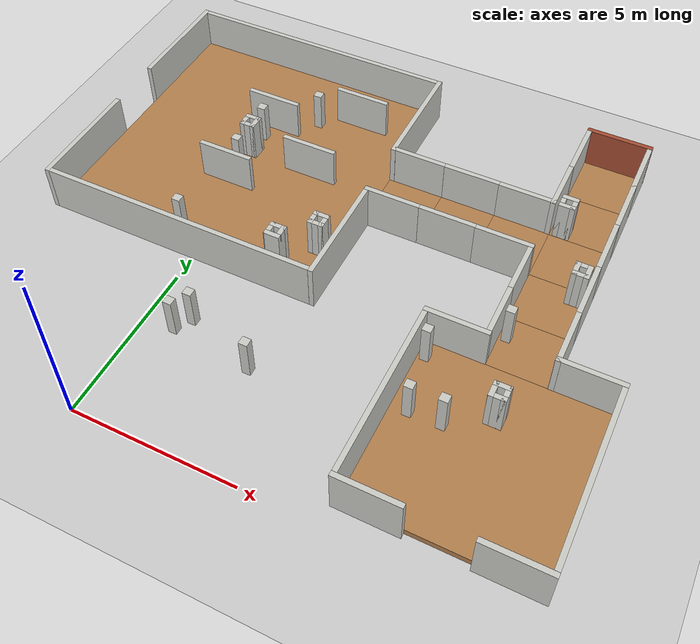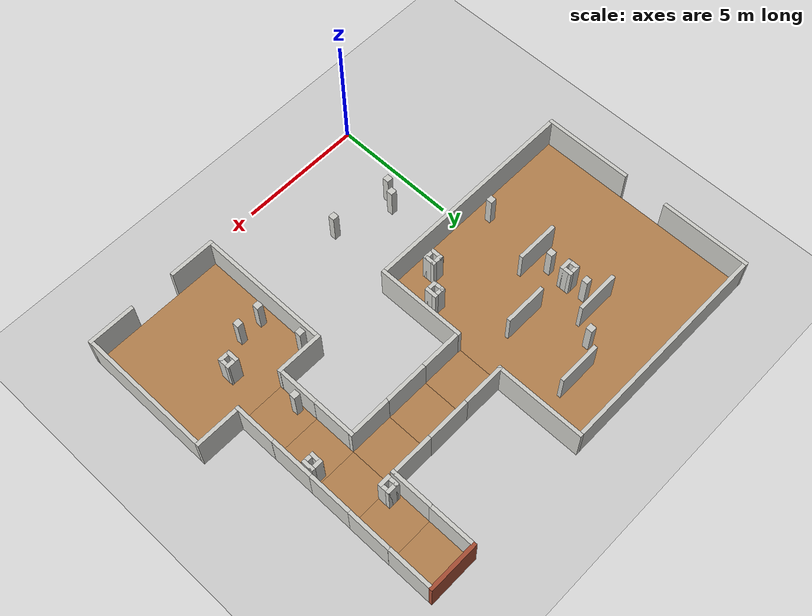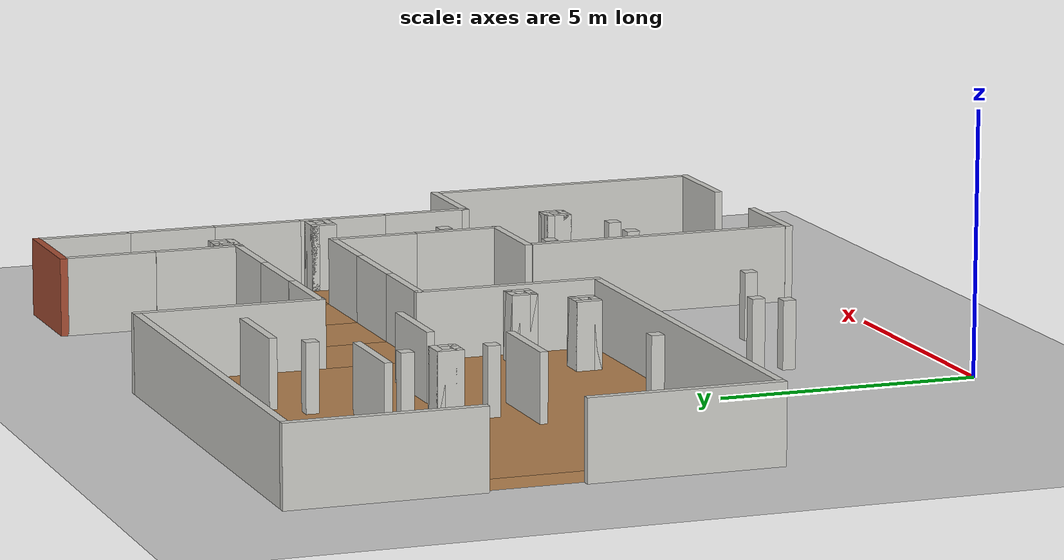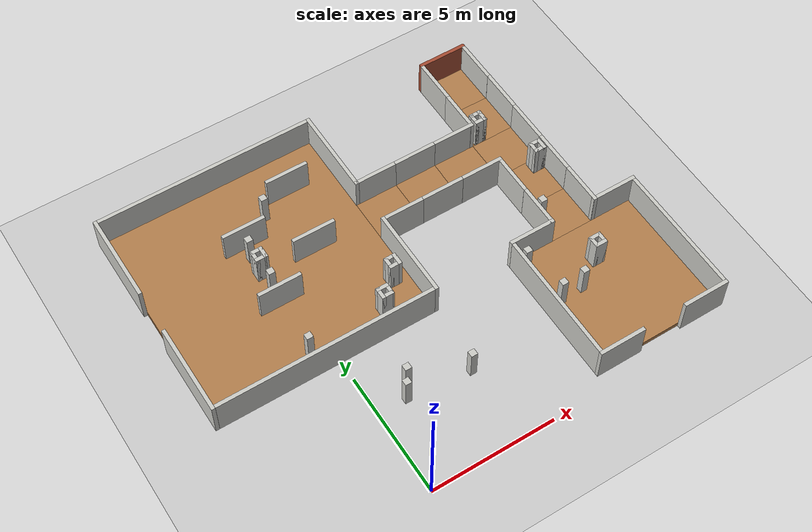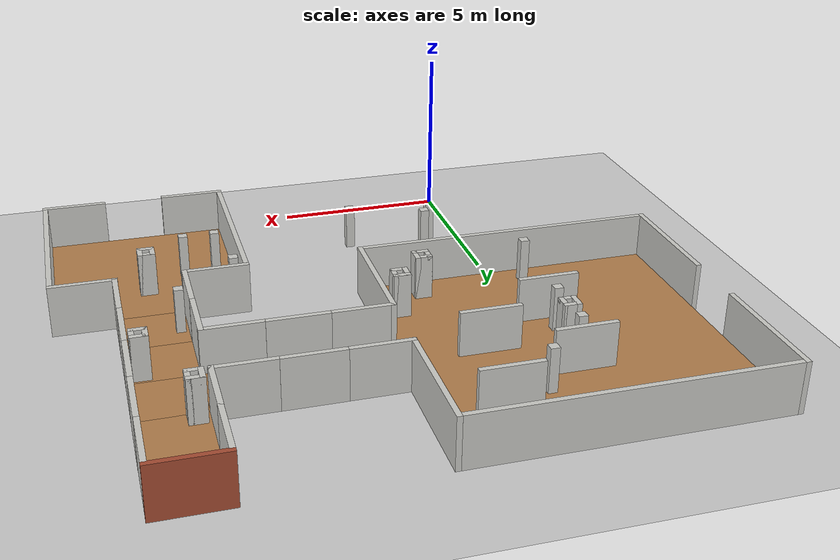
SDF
<sdf version="1.6">
 <world name="default">
  <model name="ground_plane">
   <static>1</static>
   <link name="link">
    <collision name="collision">
     <geometry><plane><normal>0 0 1</normal><size>100 100</size></plane></geometry>
     <surface><friction><ode><mu>100</mu><mu2>50</mu2></ode></friction></surface>
    </collision>
    <visual name="visual">
     <cast_shadows>0</cast_shadows>
     <geometry><plane><normal>0 0 1</normal><size>100 100</size></plane></geometry>
     <material>
      <script><uri>file://media/materials/scripts/gazebo.material</uri><name>Gazebo/Grey</name></script>
     </material>
    </visual>
   </link>
  </model>
  <model name="nerve_room_5x5ARENA_straight">
   <pose>-0.477071 10.3505 0 0 -0 1.5708</pose>
   <link name="Wall_11">
    <collision name="Wall_11_Collision">
     <geometry><box><size>8.75 0.15 1.5</size></box></geometry>
     <pose>0 0 0.75 0 -0 0</pose>
    </collision>
    <visual name="Wall_11_Visual">
     <pose>0 0 0.75 0 -0 0</pose>
     <geometry><box><size>8.75 0.15 1.5</size></box></geometry>
     <material>
      <script><uri>file://media/materials/scripts/gazebo.material</uri><name>Gazebo/CeilingTiled</name></script>
      <ambient>1 0.764706 0.305882 1</ambient>
     </material>
    </visual>
    <pose>4.4489 -0.000387 0 0 0 -1.5708</pose>
   </link>
   <link name="Wall_13">
    <collision name="Wall_13_Collision">
     <geometry><box><size>8.75 0.15 1.5</size></box></geometry>
     <pose>0 0 0.75 0 -0 0</pose>
    </collision>
    <visual name="Wall_13_Visual">
     <pose>0 0 0.75 0 -0 0</pose>
     <geometry><box><size>8.75 0.15 1.5</size></box></geometry>
     <material>
      <script><uri>file://media/materials/scripts/gazebo.material</uri><name>Gazebo/CeilingTiled</name></script>
      <ambient>1 0.764706 0.305882 1</ambient>
     </material>
    </visual>
    <pose>-4.44913 0.000846 0 0 0 -1.5708</pose>
   </link>
   <link name="Wall_15">
    <collision name="Wall_15_Collision">
     <geometry><box><size>3.65 0.15 1.5</size></box></geometry>
     <pose>0 0 0.75 0 -0 0</pose>
    </collision>
    <visual name="Wall_15_Visual">
     <pose>0 0 0.75 0 -0 0</pose>
     <geometry><box><size>3.65 0.15 1.5</size></box></geometry>
     <material>
      <script><uri>file://media/materials/scripts/gazebo.material</uri><name>Gazebo/CeilingTiled</name></script>
      <ambient>1 0.764706 0.305882 1</ambient>
     </material>
    </visual>
    <pose>2.69939 -4.45071 0 0 -0 0</pose>
   </link>
   <link name="Wall_17">
    <collision name="Wall_17_Collision">
     <geometry><box><size>3.65 0.15 1.5</size></box></geometry>
     <pose>0 0 0.75 0 -0 0</pose>
    </collision>
    <visual name="Wall_17_Visual">
     <pose>0 0 0.75 0 -0 0</pose>
     <geometry><box><size>3.65 0.15 1.5</size></box></geometry>
     <material>
      <script><uri>file://media/materials/scripts/gazebo.material</uri><name>Gazebo/CeilingTiled</name></script>
      <ambient>1 0.764706 0.305882 1</ambient>
     </material>
    </visual>
    <pose>-2.69939 4.45071 0 0 -0 0</pose>
   </link>
   <link name="Wall_19">
    <collision name="Wall_19_Collision">
     <geometry><box><size>3.65 0.15 1.5</size></box></geometry>
     <pose>0 0 0.75 0 -0 0</pose>
    </collision>
    <visual name="Wall_19_Visual">
     <pose>0 0 0.75 0 -0 0</pose>
     <geometry><box><size>3.65 0.15 1.5</size></box></geometry>
     <material>
      <script><uri>file://media/materials/scripts/gazebo.material</uri><name>Gazebo/CeilingTiled</name></script>
      <ambient>1 0.764706 0.305882 1</ambient>
     </material>
    </visual>
    <pose>2.69903 4.44972 0 0 -0 0</pose>
   </link>
   <link name="Wall_21">
    <collision name="Wall_21_Collision">
     <geometry><box><size>3.65 0.15 1.5</size></box></geometry>
     <pose>0 0 0.75 0 -0 0</pose>
    </collision>
    <visual name="Wall_21_Visual">
     <pose>0 0 0.75 0 -0 0</pose>
     <geometry><box><size>3.65 0.15 1.5</size></box></geometry>
     <material>
      <script><uri>file://media/materials/scripts/gazebo.material</uri><name>Gazebo/CeilingTiled</name></script>
      <ambient>1 0.764706 0.305882 1</ambient>
     </material>
    </visual>
    <pose>-2.69904 -4.44976 0 0 -0 0</pose>
   </link>
   <link name="Wall_6">
    <collision name="Wall_6_Collision">
     <geometry><box><size>8.76 8.75 0.2</size></box></geometry>
     <pose>0 0 0.1 0 -0 0</pose>
    </collision>
    <visual name="Wall_6_Visual">
     <pose>0 0 0.1 0 -0 0</pose>
     <geometry><box><size>8.76 8.75 0.2</size></box></geometry>
     <material>
      <script><uri>file://media/materials/scripts/gazebo.material</uri><name>Gazebo/Wood</name></script>
      <ambient>1 0.764706 0.305882 1</ambient>
     </material>
    </visual>
    <pose>0.000265 -0.004129 0 0 -0 1.5708</pose>
   </link>
   <static>1</static>
  </model>
  <model name="nerve_room_3x3">
   <pose>10.024 3.34931 0 0 -0 0</pose>
   <link name="Wall_11">
    <collision name="Wall_11_Collision">
     <geometry><box><size>5.25 0.15 1.5</size></box></geometry>
     <pose>0 0 0.75 0 -0 0</pose>
    </collision>
    <visual name="Wall_11_Visual">
     <pose>0 0 0.75 0 -0 0</pose>
     <geometry><box><size>5.25 0.15 1.5</size></box></geometry>
     <material>
      <script><uri>file://media/materials/scripts/gazebo.material</uri><name>Gazebo/CeilingTiled</name></script>
      <ambient>1 0.764706 0.305882 1</ambient>
     </material>
    </visual>
    <pose>-2.69653 -0.003278 0 0 0 -1.5708</pose>
   </link>
   <link name="Wall_13">
    <collision name="Wall_13_Collision">
     <geometry><box><size>5.25 0.15 1.5</size></box></geometry>
     <pose>0 0 0.75 0 -0 0</pose>
    </collision>
    <visual name="Wall_13_Visual">
     <pose>0 0 0.75 0 -0 0</pose>
     <geometry><box><size>5.25 0.15 1.5</size></box></geometry>
     <material>
      <script><uri>file://media/materials/scripts/gazebo.material</uri><name>Gazebo/CeilingTiled</name></script>
      <ambient>1 0.764706 0.305882 1</ambient>
     </material>
    </visual>
    <pose>2.69688 -0.000452 0 0 0 -1.5708</pose>
   </link>
   <link name="Wall_15">
    <collision name="Wall_15_Collision">
     <geometry><box><size>1.9 0.15 1.5</size></box></geometry>
     <pose>0 0 0.75 0 -0 0</pose>
    </collision>
    <visual name="Wall_15_Visual">
     <pose>0 0 0.75 0 -0 0</pose>
     <geometry><box><size>1.9 0.15 1.5</size></box></geometry>
     <material>
      <script><uri>file://media/materials/scripts/gazebo.material</uri><name>Gazebo/CeilingTiled</name></script>
      <ambient>1 0.764706 0.305882 1</ambient>
     </material>
    </visual>
    <pose>-1.82279 -2.70217 0 0 -0 0</pose>
   </link>
   <link name="Wall_17">
    <collision name="Wall_17_Collision">
     <geometry><box><size>1.9 0.15 1.5</size></box></geometry>
     <pose>0 0 0.75 0 -0 0</pose>
    </collision>
    <visual name="Wall_17_Visual">
     <pose>0 0 0.75 0 -0 0</pose>
     <geometry><box><size>1.9 0.15 1.5</size></box></geometry>
     <material>
      <script><uri>file://media/materials/scripts/gazebo.material</uri><name>Gazebo/CeilingTiled</name></script>
      <ambient>1 0.764706 0.305882 1</ambient>
     </material>
    </visual>
    <pose>-1.82219 2.69878 0 0 -0 0</pose>
   </link>
   <link name="Wall_19">
    <collision name="Wall_19_Collision">
     <geometry><box><size>1.9 0.15 1.5</size></box></geometry>
     <pose>0 0 0.75 0 -0 0</pose>
    </collision>
    <visual name="Wall_19_Visual">
     <pose>0 0 0.75 0 -0 0</pose>
     <geometry><box><size>1.9 0.15 1.5</size></box></geometry>
     <material>
      <script><uri>file://media/materials/scripts/gazebo.material</uri><name>Gazebo/CeilingTiled</name></script>
      <ambient>1 0.764706 0.305882 1</ambient>
     </material>
    </visual>
    <pose>1.82194 2.70217 0 0 -0 0</pose>
   </link>
   <link name="Wall_21">
    <collision name="Wall_21_Collision">
     <geometry><box><size>1.9 0.15 1.5</size></box></geometry>
     <pose>0 0 0.75 0 -0 0</pose>
    </collision>
    <visual name="Wall_21_Visual">
     <pose>0 0 0.75 0 -0 0</pose>
     <geometry><box><size>1.9 0.15 1.5</size></box></geometry>
     <material>
      <script><uri>file://media/materials/scripts/gazebo.material</uri><name>Gazebo/CeilingTiled</name></script>
      <ambient>1 0.764706 0.305882 1</ambient>
     </material>
    </visual>
    <pose>1.82279 -2.70173 0 0 -0 0</pose>
   </link>
   <link name="Wall_6">
    <collision name="Wall_6_Collision">
     <geometry><box><size>5.26 5.25 0.2</size></box></geometry>
     <pose>0 0 0.1 0 -0 0</pose>
    </collision>
    <visual name="Wall_6_Visual">
     <pose>0 0 0.1 0 -0 0</pose>
     <geometry><box><size>5.26 5.25 0.2</size></box></geometry>
     <material>
      <script><uri>file://media/materials/scripts/gazebo.material</uri><name>Gazebo/Wood</name></script>
      <ambient>1 0.764706 0.305882 1</ambient>
     </material>
    </visual>
    <pose>-0.001194 0.003047 0 0 -0 1.5708</pose>
   </link>
   <static>1</static>
  </model>
  <model name="nerve_straight_11">
   <pose>4.78029 10.352 0 0 0 -1.5708</pose>
   <link name="Wall_0">
    <collision name="Wall_0_Collision">
     <geometry><box><size>1.76 1.75 0.2</size></box></geometry>
     <pose>0 0 0.1 0 -0 0</pose>
    </collision>
    <visual name="Wall_0_Visual">
     <pose>0 0 0.1 0 -0 0</pose>
     <geometry><box><size>1.76 1.75 0.2</size></box></geometry>
     <material>
      <script><uri>file://media/materials/scripts/gazebo.material</uri><name>Gazebo/Wood</name></script>
      <ambient>1 0.764706 0.305882 1</ambient>
     </material>
    </visual>
    <pose>0.005 -0.002 0 0 -0 3.14159</pose>
   </link>
   <link name="Wall_2">
    <collision name="Wall_2_Collision">
     <geometry><box><size>1.75 0.15 1.5</size></box></geometry>
     <pose>0 0 0.75 0 -0 0</pose>
    </collision>
    <visual name="Wall_2_Visual">
     <pose>0 0 0.75 0 -0 0</pose>
     <geometry><box><size>1.75 0.15 1.5</size></box></geometry>
     <material>
      <script><uri>file://media/materials/scripts/gazebo.material</uri><name>Gazebo/CeilingTiled</name></script>
      <ambient>1 0.764706 0.305882 1</ambient>
     </material>
    </visual>
    <pose>-0.955 0.002 0 0 0 -1.5708</pose>
   </link>
   <link name="Wall_4">
    <collision name="Wall_4_Collision">
     <geometry><box><size>1.75 0.15 1.5</size></box></geometry>
     <pose>0 0 0.75 0 -0 0</pose>
    </collision>
    <visual name="Wall_4_Visual">
     <pose>0 0 0.75 0 -0 0</pose>
     <geometry><box><size>1.75 0.15 1.5</size></box></geometry>
     <material>
      <script><uri>file://media/materials/scripts/gazebo.material</uri><name>Gazebo/CeilingTiled</name></script>
      <ambient>1 0.764706 0.305882 1</ambient>
     </material>
    </visual>
    <pose>0.955 0.002 0 0 0 -1.5708</pose>
   </link>
   <static>1</static>
  </model>
  <model name="nerve_straight_12">
   <pose>6.52537 10.3551 0 0 0 -1.5708</pose>
   <link name="Wall_0">
    <collision name="Wall_0_Collision">
     <geometry><box><size>1.76 1.75 0.2</size></box></geometry>
     <pose>0 0 0.1 0 -0 0</pose>
    </collision>
    <visual name="Wall_0_Visual">
     <pose>0 0 0.1 0 -0 0</pose>
     <geometry><box><size>1.76 1.75 0.2</size></box></geometry>
     <material>
      <script><uri>file://media/materials/scripts/gazebo.material</uri><name>Gazebo/Wood</name></script>
      <ambient>1 0.764706 0.305882 1</ambient>
     </material>
    </visual>
    <pose>0.005 -0.002 0 0 -0 3.14159</pose>
   </link>
   <link name="Wall_2">
    <collision name="Wall_2_Collision">
     <geometry><box><size>1.75 0.15 1.5</size></box></geometry>
     <pose>0 0 0.75 0 -0 0</pose>
    </collision>
    <visual name="Wall_2_Visual">
     <pose>0 0 0.75 0 -0 0</pose>
     <geometry><box><size>1.75 0.15 1.5</size></box></geometry>
     <material>
      <script><uri>file://media/materials/scripts/gazebo.material</uri><name>Gazebo/CeilingTiled</name></script>
      <ambient>1 0.764706 0.305882 1</ambient>
     </material>
    </visual>
    <pose>-0.955 0.002 0 0 0 -1.5708</pose>
   </link>
   <link name="Wall_4">
    <collision name="Wall_4_Collision">
     <geometry><box><size>1.75 0.15 1.5</size></box></geometry>
     <pose>0 0 0.75 0 -0 0</pose>
    </collision>
    <visual name="Wall_4_Visual">
     <pose>0 0 0.75 0 -0 0</pose>
     <geometry><box><size>1.75 0.15 1.5</size></box></geometry>
     <material>
      <script><uri>file://media/materials/scripts/gazebo.material</uri><name>Gazebo/CeilingTiled</name></script>
      <ambient>1 0.764706 0.305882 1</ambient>
     </material>
    </visual>
    <pose>0.955 0.002 0 0 0 -1.5708</pose>
   </link>
   <static>1</static>
  </model>
  <model name="nerve_straight_12_clone">
   <pose>8.26364 10.3519 0 0 0 -1.5708</pose>
   <link name="Wall_0">
    <collision name="Wall_0_Collision">
     <geometry><box><size>1.76 1.75 0.2</size></box></geometry>
     <pose>0 0 0.1 0 -0 0</pose>
    </collision>
    <visual name="Wall_0_Visual">
     <pose>0 0 0.1 0 -0 0</pose>
     <geometry><box><size>1.76 1.75 0.2</size></box></geometry>
     <material>
      <script><uri>file://media/materials/scripts/gazebo.material</uri><name>Gazebo/Wood</name></script>
      <ambient>1 0.764706 0.305882 1</ambient>
     </material>
    </visual>
    <pose>0.005 -0.002 0 0 -0 3.14159</pose>
   </link>
   <link name="Wall_2">
    <collision name="Wall_2_Collision">
     <geometry><box><size>1.75 0.15 1.5</size></box></geometry>
     <pose>0 0 0.75 0 -0 0</pose>
    </collision>
    <visual name="Wall_2_Visual">
     <pose>0 0 0.75 0 -0 0</pose>
     <geometry><box><size>1.75 0.15 1.5</size></box></geometry>
     <material>
      <script><uri>file://media/materials/scripts/gazebo.material</uri><name>Gazebo/CeilingTiled</name></script>
      <ambient>1 0.764706 0.305882 1</ambient>
     </material>
    </visual>
    <pose>-0.955 0.002 0 0 0 -1.5708</pose>
   </link>
   <link name="Wall_4">
    <collision name="Wall_4_Collision">
     <geometry><box><size>1.75 0.15 1.5</size></box></geometry>
     <pose>0 0 0.75 0 -0 0</pose>
    </collision>
    <visual name="Wall_4_Visual">
     <pose>0 0 0.75 0 -0 0</pose>
     <geometry><box><size>1.75 0.15 1.5</size></box></geometry>
     <material>
      <script><uri>file://media/materials/scripts/gazebo.material</uri><name>Gazebo/CeilingTiled</name></script>
      <ambient>1 0.764706 0.305882 1</ambient>
     </material>
    </visual>
    <pose>0.955 0.002 0 0 0 -1.5708</pose>
   </link>
   <static>1</static>
  </model>
  <model name="nerve_straight_12_clone_0">
   <pose>10.0238 12.0922 0 0 -0 0</pose>
   <link name="Wall_0">
    <collision name="Wall_0_Collision">
     <geometry><box><size>1.76 1.75 0.2</size></box></geometry>
     <pose>0 0 0.1 0 -0 0</pose>
    </collision>
    <visual name="Wall_0_Visual">
     <pose>0 0 0.1 0 -0 0</pose>
     <geometry><box><size>1.76 1.75 0.2</size></box></geometry>
     <material>
      <script><uri>file://media/materials/scripts/gazebo.material</uri><name>Gazebo/Wood</name></script>
      <ambient>1 0.764706 0.305882 1</ambient>
     </material>
    </visual>
    <pose>0.005 -0.002 0 0 -0 3.14159</pose>
   </link>
   <link name="Wall_2">
    <collision name="Wall_2_Collision">
     <geometry><box><size>1.75 0.15 1.5</size></box></geometry>
     <pose>0 0 0.75 0 -0 0</pose>
    </collision>
    <visual name="Wall_2_Visual">
     <pose>0 0 0.75 0 -0 0</pose>
     <geometry><box><size>1.75 0.15 1.5</size></box></geometry>
     <material>
      <script><uri>file://media/materials/scripts/gazebo.material</uri><name>Gazebo/CeilingTiled</name></script>
      <ambient>1 0.764706 0.305882 1</ambient>
     </material>
    </visual>
    <pose>-0.955 0.002 0 0 0 -1.5708</pose>
   </link>
   <link name="Wall_4">
    <collision name="Wall_4_Collision">
     <geometry><box><size>1.75 0.15 1.5</size></box></geometry>
     <pose>0 0 0.75 0 -0 0</pose>
    </collision>
    <visual name="Wall_4_Visual">
     <pose>0 0 0.75 0 -0 0</pose>
     <geometry><box><size>1.75 0.15 1.5</size></box></geometry>
     <material>
      <script><uri>file://media/materials/scripts/gazebo.material</uri><name>Gazebo/CeilingTiled</name></script>
      <ambient>1 0.764706 0.305882 1</ambient>
     </material>
    </visual>
    <pose>0.955 0.002 0 0 0 -1.5708</pose>
   </link>
   <static>1</static>
  </model>
  <model name="nerve_straight_12_clone_1">
   <pose>10.0195 8.59681 0 0 -0 3.14159</pose>
   <link name="Wall_0">
    <collision name="Wall_0_Collision">
     <geometry><box><size>1.76 1.75 0.2</size></box></geometry>
     <pose>0 0 0.1 0 -0 0</pose>
    </collision>
    <visual name="Wall_0_Visual">
     <pose>0 0 0.1 0 -0 0</pose>
     <geometry><box><size>1.76 1.75 0.2</size></box></geometry>
     <material>
      <script><uri>file://media/materials/scripts/gazebo.material</uri><name>Gazebo/Wood</name></script>
      <ambient>1 0.764706 0.305882 1</ambient>
     </material>
    </visual>
    <pose>0.005 -0.002 0 0 -0 3.14159</pose>
   </link>
   <link name="Wall_2">
    <collision name="Wall_2_Collision">
     <geometry><box><size>1.75 0.15 1.5</size></box></geometry>
     <pose>0 0 0.75 0 -0 0</pose>
    </collision>
    <visual name="Wall_2_Visual">
     <pose>0 0 0.75 0 -0 0</pose>
     <geometry><box><size>1.75 0.15 1.5</size></box></geometry>
     <material>
      <script><uri>file://media/materials/scripts/gazebo.material</uri><name>Gazebo/CeilingTiled</name></script>
      <ambient>1 0.764706 0.305882 1</ambient>
     </material>
    </visual>
    <pose>-0.955 0.002 0 0 0 -1.5708</pose>
   </link>
   <link name="Wall_4">
    <collision name="Wall_4_Collision">
     <geometry><box><size>1.75 0.15 1.5</size></box></geometry>
     <pose>0 0 0.75 0 -0 0</pose>
    </collision>
    <visual name="Wall_4_Visual">
     <pose>0 0 0.75 0 -0 0</pose>
     <geometry><box><size>1.75 0.15 1.5</size></box></geometry>
     <material>
      <script><uri>file://media/materials/scripts/gazebo.material</uri><name>Gazebo/CeilingTiled</name></script>
      <ambient>1 0.764706 0.305882 1</ambient>
     </material>
    </visual>
    <pose>0.955 0.002 0 0 0 -1.5708</pose>
   </link>
   <static>1</static>
  </model>
  <model name="nerve_onewall_1">
   <pose>10.092 10.3466 0 0 -0 3.14159</pose>
   <link name="Wall_0">
    <collision name="Wall_0_Collision">
     <geometry><box><size>1.76 1.75 0.2</size></box></geometry>
     <pose>0 0 0.1 0 -0 0</pose>
    </collision>
    <visual name="Wall_0_Visual">
     <pose>0 0 0.1 0 -0 0</pose>
     <geometry><box><size>1.76 1.75 0.2</size></box></geometry>
     <material>
      <script><uri>file://media/materials/scripts/gazebo.material</uri><name>Gazebo/Wood</name></script>
      <ambient>1 0.764706 0.305882 1</ambient>
     </material>
    </visual>
    <pose>0.0775 -0.002 0 0 -0 3.14159</pose>
   </link>
   <link name="Wall_2">
    <collision name="Wall_2_Collision">
     <geometry><box><size>1.75 0.15 1.5</size></box></geometry>
     <pose>0 0 0.75 0 -0 0</pose>
    </collision>
    <visual name="Wall_2_Visual">
     <pose>0 0 0.75 0 -0 0</pose>
     <geometry><box><size>1.75 0.15 1.5</size></box></geometry>
     <material>
      <script><uri>file://media/materials/scripts/gazebo.material</uri><name>Gazebo/CeilingTiled</name></script>
      <ambient>1 0.764706 0.305882 1</ambient>
     </material>
    </visual>
    <pose>-0.8825 0.002 0 0 0 -1.5708</pose>
   </link>
   <static>1</static>
  </model>
  <model name="nerve_end_0">
   <pose>10.0242 13.8925 0 0 -0 0</pose>
   <link name="Wall_0">
    <collision name="Wall_0_Collision">
     <geometry><box><size>1.76 1.75 0.2</size></box></geometry>
     <pose>0 0 0.1 0 -0 0</pose>
    </collision>
    <visual name="Wall_0_Visual">
     <pose>0 0 0.1 0 -0 0</pose>
     <geometry><box><size>1.76 1.75 0.2</size></box></geometry>
     <material>
      <script><uri>file://media/materials/scripts/gazebo.material</uri><name>Gazebo/Wood</name></script>
      <ambient>1 0.764706 0.305882 1</ambient>
     </material>
    </visual>
    <pose>-0.009 -0.064 0 0 -0 0</pose>
   </link>
   <link name="Wall_2">
    <collision name="Wall_2_Collision">
     <geometry><box><size>1.8 0.15 1.5</size></box></geometry>
     <pose>0 0 0.75 0 -0 0</pose>
    </collision>
    <visual name="Wall_2_Visual">
     <pose>0 0 0.75 0 -0 0</pose>
     <geometry><box><size>1.8 0.15 1.5</size></box></geometry>
     <material>
      <script><uri>file://media/materials/scripts/gazebo.material</uri><name>Gazebo/CeilingTiled</name></script>
      <ambient>1 0.764706 0.305882 1</ambient>
     </material>
    </visual>
    <pose>-0.95 -0.065 0 0 0 -1.5708</pose>
   </link>
   <link name="Wall_4">
    <collision name="Wall_4_Collision">
     <geometry><box><size>1.8 0.15 1.5</size></box></geometry>
     <pose>0 0 0.75 0 -0 0</pose>
    </collision>
    <visual name="Wall_4_Visual">
     <pose>0 0 0.75 0 -0 0</pose>
     <geometry><box><size>1.8 0.15 1.5</size></box></geometry>
     <material>
      <script><uri>file://media/materials/scripts/gazebo.material</uri><name>Gazebo/CeilingTiled</name></script>
      <ambient>1 0.764706 0.305882 1</ambient>
     </material>
    </visual>
    <pose>0.95 -0.065 0 0 0 -1.5708</pose>
   </link>
   <link name="Wall_6">
    <collision name="Wall_6_Collision">
     <geometry><box><size>2.05 0.15 1.5</size></box></geometry>
     <pose>0 0 0.75 0 -0 0</pose>
    </collision>
    <visual name="Wall_6_Visual">
     <pose>0 0 0.75 0 -0 0</pose>
     <geometry><box><size>2.05 0.15 1.5</size></box></geometry>
     <material>
      <script><uri>file://media/materials/scripts/gazebo.material</uri><name>Gazebo/Bricks</name></script>
      <ambient>0.996078 0.47451 0.0196078 1</ambient>
     </material>
    </visual>
    <pose>0 0.89 0 0 -0 0</pose>
   </link>
   <static>1</static>
  </model>
  <model name="nerve_straight_12_clone_1_clone">
   <pose>10.023 6.85178 0 0 -0 3.14159</pose>
   <link name="Wall_0">
    <collision name="Wall_0_Collision">
     <geometry><box><size>1.76 1.75 0.2</size></box></geometry>
     <pose>0 0 0.1 0 -0 0</pose>
    </collision>
    <visual name="Wall_0_Visual">
     <pose>0 0 0.1 0 -0 0</pose>
     <geometry><box><size>1.76 1.75 0.2</size></box></geometry>
     <material>
      <script><uri>file://media/materials/scripts/gazebo.material</uri><name>Gazebo/Wood</name></script>
      <ambient>1 0.764706 0.305882 1</ambient>
     </material>
    </visual>
    <pose>0.005 -0.002 0 0 -0 3.14159</pose>
   </link>
   <link name="Wall_2">
    <collision name="Wall_2_Collision">
     <geometry><box><size>1.75 0.15 1.5</size></box></geometry>
     <pose>0 0 0.75 0 -0 0</pose>
    </collision>
    <visual name="Wall_2_Visual">
     <pose>0 0 0.75 0 -0 0</pose>
     <geometry><box><size>1.75 0.15 1.5</size></box></geometry>
     <material>
      <script><uri>file://media/materials/scripts/gazebo.material</uri><name>Gazebo/CeilingTiled</name></script>
      <ambient>1 0.764706 0.305882 1</ambient>
     </material>
    </visual>
    <pose>-0.955 0.002 0 0 0 -1.5708</pose>
   </link>
   <link name="Wall_4">
    <collision name="Wall_4_Collision">
     <geometry><box><size>1.75 0.15 1.5</size></box></geometry>
     <pose>0 0 0.75 0 -0 0</pose>
    </collision>
    <visual name="Wall_4_Visual">
     <pose>0 0 0.75 0 -0 0</pose>
     <geometry><box><size>1.75 0.15 1.5</size></box></geometry>
     <material>
      <script><uri>file://media/materials/scripts/gazebo.material</uri><name>Gazebo/CeilingTiled</name></script>
      <ambient>1 0.764706 0.305882 1</ambient>
     </material>
    </visual>
    <pose>0.955 0.002 0 0 0 -1.5708</pose>
   </link>
   <static>1</static>
  </model>
  <model name="nerve_obs_squarepillar_large_clone_5">
   <pose>9.99109 4.49916 0.2 0 -0 0</pose>
   <link name="Wall_31">
    <collision name="Wall_31_Collision">
     <geometry><box><size>0.5 0.15 1.3</size></box></geometry>
     <pose>0 0 0.65 0 -0 0</pose>
    </collision>
    <visual name="Wall_31_Visual">
     <pose>0 0 0.65 0 -0 0</pose>
     <geometry><box><size>0.5 0.15 1.3</size></box></geometry>
     <material>
      <script><uri>file://media/materials/scripts/gazebo.material</uri><name>Gazebo/CeilingTiled</name></script>
      <ambient>1 0.764706 0.305882 1</ambient>
     </material>
    </visual>
    <pose>-0.175 0 0 0 0 -1.5708</pose>
   </link>
   <link name="Wall_32">
    <collision name="Wall_32_Collision">
     <geometry><box><size>0.5 0.15 1.3</size></box></geometry>
     <pose>0 0 0.65 0 -0 0</pose>
    </collision>
    <visual name="Wall_32_Visual">
     <pose>0 0 0.65 0 -0 0</pose>
     <geometry><box><size>0.5 0.15 1.3</size></box></geometry>
     <material>
      <script><uri>file://media/materials/scripts/gazebo.material</uri><name>Gazebo/CeilingTiled</name></script>
      <ambient>1 0.764706 0.305882 1</ambient>
     </material>
    </visual>
    <pose>0 -0.175 0 0 -0 0</pose>
   </link>
   <link name="Wall_33">
    <collision name="Wall_33_Collision">
     <geometry><box><size>0.5 0.15 1.3</size></box></geometry>
     <pose>0 0 0.65 0 -0 0</pose>
    </collision>
    <visual name="Wall_33_Visual">
     <pose>0 0 0.65 0 -0 0</pose>
     <geometry><box><size>0.5 0.15 1.3</size></box></geometry>
     <material>
      <script><uri>file://media/materials/scripts/gazebo.material</uri><name>Gazebo/CeilingTiled</name></script>
      <ambient>1 0.764706 0.305882 1</ambient>
     </material>
    </visual>
    <pose>0.175 0 0 0 -0 1.5708</pose>
   </link>
   <link name="Wall_34">
    <collision name="Wall_34_Collision">
     <geometry><box><size>0.5 0.15 1.3</size></box></geometry>
     <pose>0 0 0.65 0 -0 0</pose>
    </collision>
    <visual name="Wall_34_Visual">
     <pose>0 0 0.65 0 -0 0</pose>
     <geometry><box><size>0.5 0.15 1.3</size></box></geometry>
     <material>
      <script><uri>file://media/materials/scripts/gazebo.material</uri><name>Gazebo/CeilingTiled</name></script>
      <ambient>1 0.764706 0.305882 1</ambient>
     </material>
    </visual>
    <pose>0 0.175 0 0 -0 3.14159</pose>
   </link>
   <static>1</static>
  </model>
  <model name="nerve_obs_squarepillar_small_clone_0_clone">
   <pose>7.90892 3.69636 0.2 0 -0 0</pose>
   <link name="Wall_40">
    <collision name="Wall_40_Collision">
     <geometry><box><size>0.26 0.25 1.3</size></box></geometry>
     <pose>0 0 0.65 0 -0 0</pose>
    </collision>
    <visual name="Wall_40_Visual">
     <pose>0 0 0.65 0 -0 0</pose>
     <geometry><box><size>0.26 0.25 1.3</size></box></geometry>
     <material>
      <script><uri>file://media/materials/scripts/gazebo.material</uri><name>Gazebo/CeilingTiled</name></script>
      <ambient>1 0.764706 0.305882 1</ambient>
     </material>
    </visual>
   </link>
   <static>1</static>
  </model>
  <model name="nerve_obs_squarepillar_small_clone_0_clone_0">
   <pose>8.84223 3.71791 0.2 0 -0 0</pose>
   <link name="Wall_40">
    <collision name="Wall_40_Collision">
     <geometry><box><size>0.26 0.25 1.3</size></box></geometry>
     <pose>0 0 0.65 0 -0 0</pose>
    </collision>
    <visual name="Wall_40_Visual">
     <pose>0 0 0.65 0 -0 0</pose>
     <geometry><box><size>0.26 0.25 1.3</size></box></geometry>
     <material>
      <script><uri>file://media/materials/scripts/gazebo.material</uri><name>Gazebo/CeilingTiled</name></script>
      <ambient>1 0.764706 0.305882 1</ambient>
     </material>
    </visual>
   </link>
   <static>1</static>
  </model>
  <model name="nerve_obs_squarepillar_small_clone_0_clone_3">
   <pose>7.62011 5.48579 0.2 0 -0 0</pose>
   <link name="Wall_40">
    <collision name="Wall_40_Collision">
     <geometry><box><size>0.26 0.25 1.3</size></box></geometry>
     <pose>0 0 0.65 0 -0 0</pose>
    </collision>
    <visual name="Wall_40_Visual">
     <pose>0 0 0.65 0 -0 0</pose>
     <geometry><box><size>0.26 0.25 1.3</size></box></geometry>
     <material>
      <script><uri>file://media/materials/scripts/gazebo.material</uri><name>Gazebo/CeilingTiled</name></script>
      <ambient>1 0.764706 0.305882 1</ambient>
     </material>
    </visual>
   </link>
   <static>1</static>
  </model>
  <model name="nerve_obs_squarepillar_small_clone_0_clone_1_clone">
   <pose>3.5855 3.00404 0.2 0 -0 0</pose>
   <link name="Wall_40">
    <collision name="Wall_40_Collision">
     <geometry><box><size>0.26 0.25 1.3</size></box></geometry>
     <pose>0 0 0.65 0 -0 0</pose>
    </collision>
    <visual name="Wall_40_Visual">
     <pose>0 0 0.65 0 -0 0</pose>
     <geometry><box><size>0.26 0.25 1.3</size></box></geometry>
     <material>
      <script><uri>file://media/materials/scripts/gazebo.material</uri><name>Gazebo/CeilingTiled</name></script>
      <ambient>1 0.764706 0.305882 1</ambient>
     </material>
    </visual>
   </link>
   <static>1</static>
  </model>
  <model name="nerve_obs_wall_full_clone_2">
   <pose>1.56429 10.3084 0.2 0 -0 0</pose>
   <link name="Wall_21">
    <collision name="Wall_21_Collision">
     <geometry><box><size>1.75 0.15 1.3</size></box></geometry>
     <pose>0 0 0.65 0 -0 0</pose>
    </collision>
    <visual name="Wall_21_Visual">
     <pose>0 0 0.65 0 -0 0</pose>
     <geometry><box><size>1.75 0.15 1.3</size></box></geometry>
     <material>
      <script><uri>file://media/materials/scripts/gazebo.material</uri><name>Gazebo/CeilingTiled</name></script>
      <ambient>1 0.764706 0.305882 1</ambient>
     </material>
    </visual>
   </link>
   <static>1</static>
  </model>
  <model name="nerve_obs_wall_full_clone_3">
   <pose>-0.49771 11.795 0.2 0 -0 0</pose>
   <link name="Wall_21">
    <collision name="Wall_21_Collision">
     <geometry><box><size>1.75 0.15 1.3</size></box></geometry>
     <pose>0 0 0.65 0 -0 0</pose>
    </collision>
    <visual name="Wall_21_Visual">
     <pose>0 0 0.65 0 -0 0</pose>
     <geometry><box><size>1.75 0.15 1.3</size></box></geometry>
     <material>
      <script><uri>file://media/materials/scripts/gazebo.material</uri><name>Gazebo/CeilingTiled</name></script>
      <ambient>1 0.764706 0.305882 1</ambient>
     </material>
    </visual>
   </link>
   <static>1</static>
  </model>
  <model name="nerve_obs_wall_full_clone_4">
   <pose>-0.607229 8.95875 0.2 0 -0 0</pose>
   <link name="Wall_21">
    <collision name="Wall_21_Collision">
     <geometry><box><size>1.75 0.15 1.3</size></box></geometry>
     <pose>0 0 0.65 0 -0 0</pose>
    </collision>
    <visual name="Wall_21_Visual">
     <pose>0 0 0.65 0 -0 0</pose>
     <geometry><box><size>1.75 0.15 1.3</size></box></geometry>
     <material>
      <script><uri>file://media/materials/scripts/gazebo.material</uri><name>Gazebo/CeilingTiled</name></script>
      <ambient>1 0.764706 0.305882 1</ambient>
     </material>
    </visual>
   </link>
   <static>1</static>
  </model>
  <model name="nerve_obs_wall_full_clone_6">
   <pose>2.03007 13.0991 0.2 0 -0 0</pose>
   <link name="Wall_21">
    <collision name="Wall_21_Collision">
     <geometry><box><size>1.75 0.15 1.3</size></box></geometry>
     <pose>0 0 0.65 0 -0 0</pose>
    </collision>
    <visual name="Wall_21_Visual">
     <pose>0 0 0.65 0 -0 0</pose>
     <geometry><box><size>1.75 0.15 1.3</size></box></geometry>
     <material>
      <script><uri>file://media/materials/scripts/gazebo.material</uri><name>Gazebo/CeilingTiled</name></script>
      <ambient>1 0.764706 0.305882 1</ambient>
     </material>
    </visual>
   </link>
   <static>1</static>
  </model>
  <model name="nerve_obs_squarepillar_large_clone_3_clone_clone_2">
   <pose>3.27788 7.66476 0.2 0 -0 0</pose>
   <link name="Wall_31">
    <collision name="Wall_31_Collision">
     <geometry><box><size>0.5 0.15 1.3</size></box></geometry>
     <pose>0 0 0.65 0 -0 0</pose>
    </collision>
    <visual name="Wall_31_Visual">
     <pose>0 0 0.65 0 -0 0</pose>
     <geometry><box><size>0.5 0.15 1.3</size></box></geometry>
     <material>
      <script><uri>file://media/materials/scripts/gazebo.material</uri><name>Gazebo/CeilingTiled</name></script>
      <ambient>1 0.764706 0.305882 1</ambient>
     </material>
    </visual>
    <pose>-0.175 0 0 0 0 -1.5708</pose>
   </link>
   <link name="Wall_32">
    <collision name="Wall_32_Collision">
     <geometry><box><size>0.5 0.15 1.3</size></box></geometry>
     <pose>0 0 0.65 0 -0 0</pose>
    </collision>
    <visual name="Wall_32_Visual">
     <pose>0 0 0.65 0 -0 0</pose>
     <geometry><box><size>0.5 0.15 1.3</size></box></geometry>
     <material>
      <script><uri>file://media/materials/scripts/gazebo.material</uri><name>Gazebo/CeilingTiled</name></script>
      <ambient>1 0.764706 0.305882 1</ambient>
     </material>
    </visual>
    <pose>0 -0.175 0 0 -0 0</pose>
   </link>
   <link name="Wall_33">
    <collision name="Wall_33_Collision">
     <geometry><box><size>0.5 0.15 1.3</size></box></geometry>
     <pose>0 0 0.65 0 -0 0</pose>
    </collision>
    <visual name="Wall_33_Visual">
     <pose>0 0 0.65 0 -0 0</pose>
     <geometry><box><size>0.5 0.15 1.3</size></box></geometry>
     <material>
      <script><uri>file://media/materials/scripts/gazebo.material</uri><name>Gazebo/CeilingTiled</name></script>
      <ambient>1 0.764706 0.305882 1</ambient>
     </material>
    </visual>
    <pose>0.175 0 0 0 -0 1.5708</pose>
   </link>
   <link name="Wall_34">
    <collision name="Wall_34_Collision">
     <geometry><box><size>0.5 0.15 1.3</size></box></geometry>
     <pose>0 0 0.65 0 -0 0</pose>
    </collision>
    <visual name="Wall_34_Visual">
     <pose>0 0 0.65 0 -0 0</pose>
     <geometry><box><size>0.5 0.15 1.3</size></box></geometry>
     <material>
      <script><uri>file://media/materials/scripts/gazebo.material</uri><name>Gazebo/CeilingTiled</name></script>
      <ambient>1 0.764706 0.305882 1</ambient>
     </material>
    </visual>
    <pose>0 0.175 0 0 -0 3.14159</pose>
   </link>
   <static>1</static>
  </model>
  <model name="nerve_obs_squarepillar_large_clone_3_clone_clone_3">
   <pose>2.3734 6.73901 0.2 0 -0 0</pose>
   <link name="Wall_31">
    <collision name="Wall_31_Collision">
     <geometry><box><size>0.5 0.15 1.3</size></box></geometry>
     <pose>0 0 0.65 0 -0 0</pose>
    </collision>
    <visual name="Wall_31_Visual">
     <pose>0 0 0.65 0 -0 0</pose>
     <geometry><box><size>0.5 0.15 1.3</size></box></geometry>
     <material>
      <script><uri>file://media/materials/scripts/gazebo.material</uri><name>Gazebo/CeilingTiled</name></script>
      <ambient>1 0.764706 0.305882 1</ambient>
     </material>
    </visual>
    <pose>-0.175 0 0 0 0 -1.5708</pose>
   </link>
   <link name="Wall_32">
    <collision name="Wall_32_Collision">
     <geometry><box><size>0.5 0.15 1.3</size></box></geometry>
     <pose>0 0 0.65 0 -0 0</pose>
    </collision>
    <visual name="Wall_32_Visual">
     <pose>0 0 0.65 0 -0 0</pose>
     <geometry><box><size>0.5 0.15 1.3</size></box></geometry>
     <material>
      <script><uri>file://media/materials/scripts/gazebo.material</uri><name>Gazebo/CeilingTiled</name></script>
      <ambient>1 0.764706 0.305882 1</ambient>
     </material>
    </visual>
    <pose>0 -0.175 0 0 -0 0</pose>
   </link>
   <link name="Wall_33">
    <collision name="Wall_33_Collision">
     <geometry><box><size>0.5 0.15 1.3</size></box></geometry>
     <pose>0 0 0.65 0 -0 0</pose>
    </collision>
    <visual name="Wall_33_Visual">
     <pose>0 0 0.65 0 -0 0</pose>
     <geometry><box><size>0.5 0.15 1.3</size></box></geometry>
     <material>
      <script><uri>file://media/materials/scripts/gazebo.material</uri><name>Gazebo/CeilingTiled</name></script>
      <ambient>1 0.764706 0.305882 1</ambient>
     </material>
    </visual>
    <pose>0.175 0 0 0 -0 1.5708</pose>
   </link>
   <link name="Wall_34">
    <collision name="Wall_34_Collision">
     <geometry><box><size>0.5 0.15 1.3</size></box></geometry>
     <pose>0 0 0.65 0 -0 0</pose>
    </collision>
    <visual name="Wall_34_Visual">
     <pose>0 0 0.65 0 -0 0</pose>
     <geometry><box><size>0.5 0.15 1.3</size></box></geometry>
     <material>
      <script><uri>file://media/materials/scripts/gazebo.material</uri><name>Gazebo/CeilingTiled</name></script>
      <ambient>1 0.764706 0.305882 1</ambient>
     </material>
    </visual>
    <pose>0 0.175 0 0 -0 3.14159</pose>
   </link>
   <static>1</static>
  </model>
  <model name="nerve_obs_squarepillar_large_clone_3_clone_clone_4">
   <pose>-0.60102 10.4638 0.2 0 -0 0</pose>
   <link name="Wall_31">
    <collision name="Wall_31_Collision">
     <geometry><box><size>0.5 0.15 1.3</size></box></geometry>
     <pose>0 0 0.65 0 -0 0</pose>
    </collision>
    <visual name="Wall_31_Visual">
     <pose>0 0 0.65 0 -0 0</pose>
     <geometry><box><size>0.5 0.15 1.3</size></box></geometry>
     <material>
      <script><uri>file://media/materials/scripts/gazebo.material</uri><name>Gazebo/CeilingTiled</name></script>
      <ambient>1 0.764706 0.305882 1</ambient>
     </material>
    </visual>
    <pose>-0.175 0 0 0 0 -1.5708</pose>
   </link>
   <link name="Wall_32">
    <collision name="Wall_32_Collision">
     <geometry><box><size>0.5 0.15 1.3</size></box></geometry>
     <pose>0 0 0.65 0 -0 0</pose>
    </collision>
    <visual name="Wall_32_Visual">
     <pose>0 0 0.65 0 -0 0</pose>
     <geometry><box><size>0.5 0.15 1.3</size></box></geometry>
     <material>
      <script><uri>file://media/materials/scripts/gazebo.material</uri><name>Gazebo/CeilingTiled</name></script>
      <ambient>1 0.764706 0.305882 1</ambient>
     </material>
    </visual>
    <pose>0 -0.175 0 0 -0 0</pose>
   </link>
   <link name="Wall_33">
    <collision name="Wall_33_Collision">
     <geometry><box><size>0.5 0.15 1.3</size></box></geometry>
     <pose>0 0 0.65 0 -0 0</pose>
    </collision>
    <visual name="Wall_33_Visual">
     <pose>0 0 0.65 0 -0 0</pose>
     <geometry><box><size>0.5 0.15 1.3</size></box></geometry>
     <material>
      <script><uri>file://media/materials/scripts/gazebo.material</uri><name>Gazebo/CeilingTiled</name></script>
      <ambient>1 0.764706 0.305882 1</ambient>
     </material>
    </visual>
    <pose>0.175 0 0 0 -0 1.5708</pose>
   </link>
   <link name="Wall_34">
    <collision name="Wall_34_Collision">
     <geometry><box><size>0.5 0.15 1.3</size></box></geometry>
     <pose>0 0 0.65 0 -0 0</pose>
    </collision>
    <visual name="Wall_34_Visual">
     <pose>0 0 0.65 0 -0 0</pose>
     <geometry><box><size>0.5 0.15 1.3</size></box></geometry>
     <material>
      <script><uri>file://media/materials/scripts/gazebo.material</uri><name>Gazebo/CeilingTiled</name></script>
      <ambient>1 0.764706 0.305882 1</ambient>
     </material>
    </visual>
    <pose>0 0.175 0 0 -0 3.14159</pose>
   </link>
   <static>1</static>
  </model>
  <model name="nerve_obs_squarepillar_small_clone_0_clone_1_clone_4_clone_5_clone">
   <pose>-0.804067 6.59984 0.2 0 -0 0</pose>
   <link name="Wall_40">
    <collision name="Wall_40_Collision">
     <geometry><box><size>0.26 0.25 1.3</size></box></geometry>
     <pose>0 0 0.65 0 -0 0</pose>
    </collision>
    <visual name="Wall_40_Visual">
     <pose>0 0 0.65 0 -0 0</pose>
     <geometry><box><size>0.26 0.25 1.3</size></box></geometry>
     <material>
      <script><uri>file://media/materials/scripts/gazebo.material</uri><name>Gazebo/CeilingTiled</name></script>
      <ambient>1 0.764706 0.305882 1</ambient>
     </material>
    </visual>
   </link>
   <static>1</static>
  </model>
  <model name="nerve_obs_squarepillar_small_clone_0_clone_1_clone_4_clone_5_clone_2">
   <pose>0.734117 12.5436 0.2 0 -0 0</pose>
   <link name="Wall_40">
    <collision name="Wall_40_Collision">
     <geometry><box><size>0.26 0.25 1.3</size></box></geometry>
     <pose>0 0 0.65 0 -0 0</pose>
    </collision>
    <visual name="Wall_40_Visual">
     <pose>0 0 0.65 0 -0 0</pose>
     <geometry><box><size>0.26 0.25 1.3</size></box></geometry>
     <material>
      <script><uri>file://media/materials/scripts/gazebo.material</uri><name>Gazebo/CeilingTiled</name></script>
      <ambient>1 0.764706 0.305882 1</ambient>
     </material>
    </visual>
   </link>
   <static>1</static>
  </model>
  <model name="nerve_obs_squarepillar_small_clone_0_clone_1_clone_4_clone_5_clone_3">
   <pose>-0.603519 11.2258 0.2 0 -0 0</pose>
   <link name="Wall_40">
    <collision name="Wall_40_Collision">
     <geometry><box><size>0.26 0.25 1.3</size></box></geometry>
     <pose>0 0 0.65 0 -0 0</pose>
    </collision>
    <visual name="Wall_40_Visual">
     <pose>0 0 0.65 0 -0 0</pose>
     <geometry><box><size>0.26 0.25 1.3</size></box></geometry>
     <material>
      <script><uri>file://media/materials/scripts/gazebo.material</uri><name>Gazebo/CeilingTiled</name></script>
      <ambient>1 0.764706 0.305882 1</ambient>
     </material>
    </visual>
   </link>
   <static>1</static>
  </model>
  <model name="nerve_obs_squarepillar_small_clone_0_clone_1_clone_4_clone_5_clone_4">
   <pose>-0.602443 9.6147 0.2 0 -0 0</pose>
   <link name="Wall_40">
    <collision name="Wall_40_Collision">
     <geometry><box><size>0.26 0.25 1.3</size></box></geometry>
     <pose>0 0 0.65 0 -0 0</pose>
    </collision>
    <visual name="Wall_40_Visual">
     <pose>0 0 0.65 0 -0 0</pose>
     <geometry><box><size>0.26 0.25 1.3</size></box></geometry>
     <material>
      <script><uri>file://media/materials/scripts/gazebo.material</uri><name>Gazebo/CeilingTiled</name></script>
      <ambient>1 0.764706 0.305882 1</ambient>
     </material>
    </visual>
   </link>
   <static>1</static>
  </model>
  <model name="nerve_obs_squarepillar_large_clone_5_clone_3">
   <pose>9.47807 11.4712 0.2 0 -0 0</pose>
   <link name="Wall_31">
    <collision name="Wall_31_Collision">
     <geometry><box><size>0.5 0.15 1.3</size></box></geometry>
     <pose>0 0 0.65 0 -0 0</pose>
    </collision>
    <visual name="Wall_31_Visual">
     <pose>0 0 0.65 0 -0 0</pose>
     <geometry><box><size>0.5 0.15 1.3</size></box></geometry>
     <material>
      <script><uri>file://media/materials/scripts/gazebo.material</uri><name>Gazebo/CeilingTiled</name></script>
      <ambient>1 0.764706 0.305882 1</ambient>
     </material>
    </visual>
    <pose>-0.175 0 0 0 0 -1.5708</pose>
   </link>
   <link name="Wall_32">
    <collision name="Wall_32_Collision">
     <geometry><box><size>0.5 0.15 1.3</size></box></geometry>
     <pose>0 0 0.65 0 -0 0</pose>
    </collision>
    <visual name="Wall_32_Visual">
     <pose>0 0 0.65 0 -0 0</pose>
     <geometry><box><size>0.5 0.15 1.3</size></box></geometry>
     <material>
      <script><uri>file://media/materials/scripts/gazebo.material</uri><name>Gazebo/CeilingTiled</name></script>
      <ambient>1 0.764706 0.305882 1</ambient>
     </material>
    </visual>
    <pose>0 -0.175 0 0 -0 0</pose>
   </link>
   <link name="Wall_33">
    <collision name="Wall_33_Collision">
     <geometry><box><size>0.5 0.15 1.3</size></box></geometry>
     <pose>0 0 0.65 0 -0 0</pose>
    </collision>
    <visual name="Wall_33_Visual">
     <pose>0 0 0.65 0 -0 0</pose>
     <geometry><box><size>0.5 0.15 1.3</size></box></geometry>
     <material>
      <script><uri>file://media/materials/scripts/gazebo.material</uri><name>Gazebo/CeilingTiled</name></script>
      <ambient>1 0.764706 0.305882 1</ambient>
     </material>
    </visual>
    <pose>0.175 0 0 0 -0 1.5708</pose>
   </link>
   <link name="Wall_34">
    <collision name="Wall_34_Collision">
     <geometry><box><size>0.5 0.15 1.3</size></box></geometry>
     <pose>0 0 0.65 0 -0 0</pose>
    </collision>
    <visual name="Wall_34_Visual">
     <pose>0 0 0.65 0 -0 0</pose>
     <geometry><box><size>0.5 0.15 1.3</size></box></geometry>
     <material>
      <script><uri>file://media/materials/scripts/gazebo.material</uri><name>Gazebo/CeilingTiled</name></script>
      <ambient>1 0.764706 0.305882 1</ambient>
     </material>
    </visual>
    <pose>0 0.175 0 0 -0 3.14159</pose>
   </link>
   <static>1</static>
  </model>
  <model name="nerve_obs_squarepillar_large_clone_5_clone_4">
   <pose>10.6123 9.1596 0.2 0 -0 0</pose>
   <link name="Wall_31">
    <collision name="Wall_31_Collision">
     <geometry><box><size>0.5 0.15 1.3</size></box></geometry>
     <pose>0 0 0.65 0 -0 0</pose>
    </collision>
    <visual name="Wall_31_Visual">
     <pose>0 0 0.65 0 -0 0</pose>
     <geometry><box><size>0.5 0.15 1.3</size></box></geometry>
     <material>
      <script><uri>file://media/materials/scripts/gazebo.material</uri><name>Gazebo/CeilingTiled</name></script>
      <ambient>1 0.764706 0.305882 1</ambient>
     </material>
    </visual>
    <pose>-0.175 0 0 0 0 -1.5708</pose>
   </link>
   <link name="Wall_32">
    <collision name="Wall_32_Collision">
     <geometry><box><size>0.5 0.15 1.3</size></box></geometry>
     <pose>0 0 0.65 0 -0 0</pose>
    </collision>
    <visual name="Wall_32_Visual">
     <pose>0 0 0.65 0 -0 0</pose>
     <geometry><box><size>0.5 0.15 1.3</size></box></geometry>
     <material>
      <script><uri>file://media/materials/scripts/gazebo.material</uri><name>Gazebo/CeilingTiled</name></script>
      <ambient>1 0.764706 0.305882 1</ambient>
     </material>
    </visual>
    <pose>0 -0.175 0 0 -0 0</pose>
   </link>
   <link name="Wall_33">
    <collision name="Wall_33_Collision">
     <geometry><box><size>0.5 0.15 1.3</size></box></geometry>
     <pose>0 0 0.65 0 -0 0</pose>
    </collision>
    <visual name="Wall_33_Visual">
     <pose>0 0 0.65 0 -0 0</pose>
     <geometry><box><size>0.5 0.15 1.3</size></box></geometry>
     <material>
      <script><uri>file://media/materials/scripts/gazebo.material</uri><name>Gazebo/CeilingTiled</name></script>
      <ambient>1 0.764706 0.305882 1</ambient>
     </material>
    </visual>
    <pose>0.175 0 0 0 -0 1.5708</pose>
   </link>
   <link name="Wall_34">
    <collision name="Wall_34_Collision">
     <geometry><box><size>0.5 0.15 1.3</size></box></geometry>
     <pose>0 0 0.65 0 -0 0</pose>
    </collision>
    <visual name="Wall_34_Visual">
     <pose>0 0 0.65 0 -0 0</pose>
     <geometry><box><size>0.5 0.15 1.3</size></box></geometry>
     <material>
      <script><uri>file://media/materials/scripts/gazebo.material</uri><name>Gazebo/CeilingTiled</name></script>
      <ambient>1 0.764706 0.305882 1</ambient>
     </material>
    </visual>
    <pose>0 0.175 0 0 -0 3.14159</pose>
   </link>
   <static>1</static>
  </model>
  <model name="nerve_obs_squarepillar_small_clone_0_clone_3_clone">
   <pose>9.35761 7.03704 0.2 0 -0 0</pose>
   <link name="Wall_40">
    <collision name="Wall_40_Collision">
     <geometry><box><size>0.26 0.25 1.3</size></box></geometry>
     <pose>0 0 0.65 0 -0 0</pose>
    </collision>
    <visual name="Wall_40_Visual">
     <pose>0 0 0.65 0 -0 0</pose>
     <geometry><box><size>0.26 0.25 1.3</size></box></geometry>
     <material>
      <script><uri>file://media/materials/scripts/gazebo.material</uri><name>Gazebo/CeilingTiled</name></script>
      <ambient>1 0.764706 0.305882 1</ambient>
     </material>
    </visual>
   </link>
   <static>1</static>
  </model>
  <model name="nerve_obs_squarepillar_small_clone_0_clone_1_clone_0_clone_0">
   <pose>1.09461 3.27268 0.2 0 -0 0</pose>
   <link name="Wall_40">
    <collision name="Wall_40_Collision">
     <geometry><box><size>0.26 0.25 1.3</size></box></geometry>
     <pose>0 0 0.65 0 -0 0</pose>
    </collision>
    <visual name="Wall_40_Visual">
     <pose>0 0 0.65 0 -0 0</pose>
     <geometry><box><size>0.26 0.25 1.3</size></box></geometry>
     <material>
      <script><uri>file://media/materials/scripts/gazebo.material</uri><name>Gazebo/CeilingTiled</name></script>
      <ambient>1 0.764706 0.305882 1</ambient>
     </material>
    </visual>
   </link>
   <static>1</static>
  </model>
  <model name="nerve_obs_squarepillar_small_clone_0_clone_1_clone_0_clone_1">
   <pose>1.39671 3.75747 0.2 0 -0 0</pose>
   <link name="Wall_40">
    <collision name="Wall_40_Collision">
     <geometry><box><size>0.26 0.25 1.3</size></box></geometry>
     <pose>0 0 0.65 0 -0 0</pose>
    </collision>
    <visual name="Wall_40_Visual">
     <pose>0 0 0.65 0 -0 0</pose>
     <geometry><box><size>0.26 0.25 1.3</size></box></geometry>
     <material>
      <script><uri>file://media/materials/scripts/gazebo.material</uri><name>Gazebo/CeilingTiled</name></script>
      <ambient>1 0.764706 0.305882 1</ambient>
     </material>
    </visual>
   </link>
   <static>1</static>
  </model>
 </world>
</sdf>
